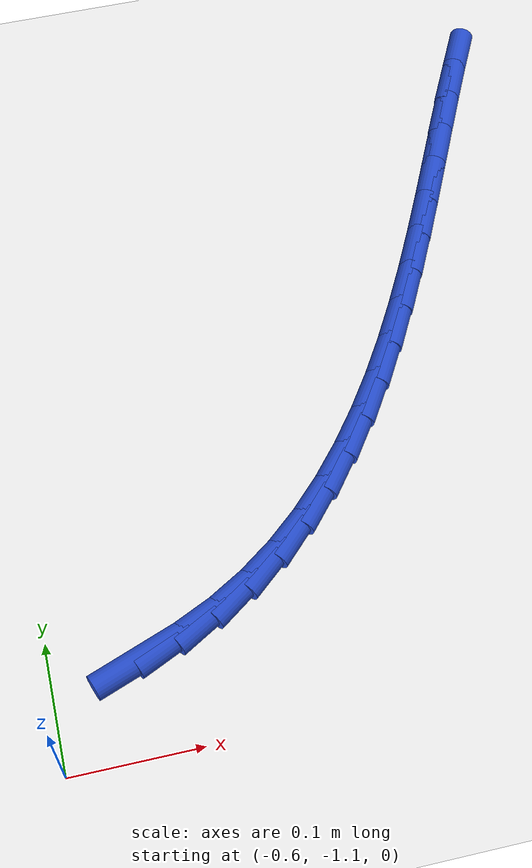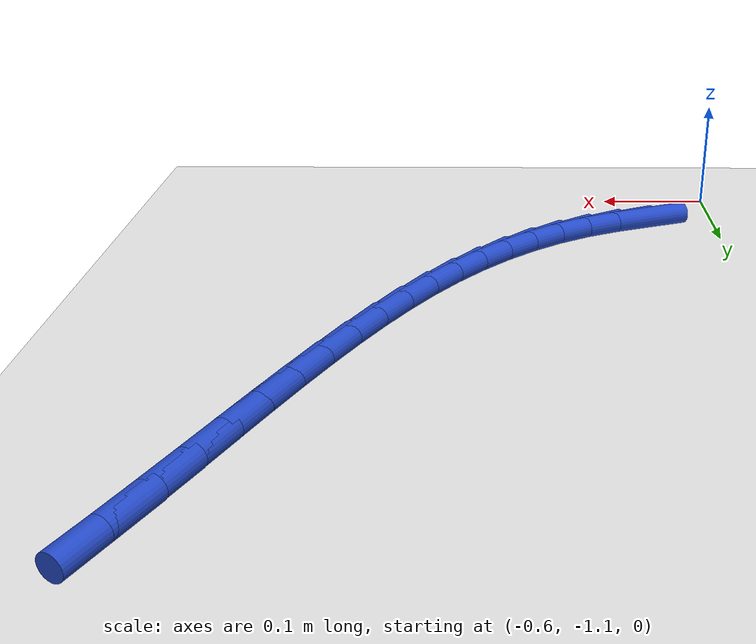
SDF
<sdf version="1.6">
 <world name="default">
  <model name="ground_plane">
   <static>1</static>
   <link name="link">
    <collision name="collision">
     <geometry><plane><normal>0 0 1</normal><size>100 100</size></plane></geometry>
     <surface><friction><ode><mu>100</mu><mu2>50</mu2></ode></friction></surface>
    </collision>
    <visual name="visual">
     <cast_shadows>0</cast_shadows>
     <geometry><plane><normal>0 0 1</normal><size>100 100</size></plane></geometry>
     <material>
      <script><uri>file://media/materials/scripts/gazebo.material</uri><name>Gazebo/WhiteGlow</name></script>
     </material>
    </visual>
   </link>
  </model>
  <model name="line">
   <link name="link_185">
    <pose>-0.5330628065357319 -1.0299511097980987 0.01 0 1.57 0.3569933631917016</pose>
    <collision name="collision">
     <geometry><cylinder><radius>0.01</radius><length>0.08</length></cylinder></geometry>
    </collision>
    <visual name="visual">
     <material>
      <script><name>Gazebo/Blue</name><uri>file://media/materials/scripts/gazebo.material</uri></script>
     </material>
     <geometry><cylinder><radius>0.01</radius><length>0.08</length></cylinder></geometry>
    </visual>
   </link>
   <link name="link_186">
    <pose>-0.5019303714841002 -1.018339517629206 0.01 0 1.57 0.43510692588045785</pose>
    <collision name="collision">
     <geometry><cylinder><radius>0.01</radius><length>0.08</length></cylinder></geometry>
    </collision>
    <visual name="visual">
     <material>
      <script><name>Gazebo/Blue</name><uri>file://media/materials/scripts/gazebo.material</uri></script>
     </material>
     <geometry><cylinder><radius>0.01</radius><length>0.08</length></cylinder></geometry>
    </visual>
   </link>
   <link name="link_187">
    <pose>-0.4723407516763172 -1.0045857690656377 0.01 0 1.57 0.5326010901114498</pose>
    <collision name="collision">
     <geometry><cylinder><radius>0.01</radius><length>0.08</length></cylinder></geometry>
    </collision>
    <visual name="visual">
     <material>
      <script><name>Gazebo/Blue</name><uri>file://media/materials/scripts/gazebo.material</uri></script>
     </material>
     <geometry><cylinder><radius>0.01</radius><length>0.08</length></cylinder></geometry>
    </visual>
   </link>
   <link name="link_188">
    <pose>-0.44456528169954584 -0.9882144516904686 0.01 0 1.57 0.6295128754005734</pose>
    <collision name="collision">
     <geometry><cylinder><radius>0.01</radius><length>0.08</length></cylinder></geometry>
    </collision>
    <visual name="visual">
     <material>
      <script><name>Gazebo/Blue</name><uri>file://media/materials/scripts/gazebo.material</uri></script>
     </material>
     <geometry><cylinder><radius>0.01</radius><length>0.08</length></cylinder></geometry>
    </visual>
   </link>
   <link name="link_189">
    <pose>-0.4185633994945465 -0.9692754890908538 0.01 0 1.57 0.7182928912302163</pose>
    <collision name="collision">
     <geometry><cylinder><radius>0.01</radius><length>0.08</length></cylinder></geometry>
    </collision>
    <visual name="visual">
     <material>
      <script><name>Gazebo/Blue</name><uri>file://media/materials/scripts/gazebo.material</uri></script>
     </material>
     <geometry><cylinder><radius>0.01</radius><length>0.08</length></cylinder></geometry>
    </visual>
   </link>
   <link name="link_190">
    <pose>-0.3941989985574737 -0.947979732960485 0.01 0 1.57 0.7978931191088711</pose>
    <collision name="collision">
     <geometry><cylinder><radius>0.01</radius><length>0.08</length></cylinder></geometry>
    </collision>
    <visual name="visual">
     <material>
      <script><name>Gazebo/Blue</name><uri>file://media/materials/scripts/gazebo.material</uri></script>
     </material>
     <geometry><cylinder><radius>0.01</radius><length>0.08</length></cylinder></geometry>
    </visual>
   </link>
   <link name="link_191">
    <pose>-0.37133594764199096 -0.9245380766675092 0.01 0 1.57 0.8679593465271759</pose>
    <collision name="collision">
     <geometry><cylinder><radius>0.01</radius><length>0.08</length></cylinder></geometry>
    </collision>
    <visual name="visual">
     <material>
      <script><name>Gazebo/Blue</name><uri>file://media/materials/scripts/gazebo.material</uri></script>
     </material>
     <geometry><cylinder><radius>0.01</radius><length>0.08</length></cylinder></geometry>
    </visual>
   </link>
   <link name="link_192">
    <pose>-0.3498381155017599 -0.8991614135800713 0.01 0 1.57 0.9286388256259541</pose>
    <collision name="collision">
     <geometry><cylinder><radius>0.01</radius><length>0.08</length></cylinder></geometry>
    </collision>
    <visual name="visual">
     <material>
      <script><name>Gazebo/Blue</name><uri>file://media/materials/scripts/gazebo.material</uri></script>
     </material>
     <geometry><cylinder><radius>0.01</radius><length>0.08</length></cylinder></geometry>
    </visual>
   </link>
   <link name="link_193">
    <pose>-0.3295693708904429 -0.8720606370663168 0.01 0 1.57 0.9803832017423327</pose>
    <collision name="collision">
     <geometry><cylinder><radius>0.01</radius><length>0.08</length></cylinder></geometry>
    </collision>
    <visual name="visual">
     <material>
      <script><name>Gazebo/Blue</name><uri>file://media/materials/scripts/gazebo.material</uri></script>
     </material>
     <geometry><cylinder><radius>0.01</radius><length>0.08</length></cylinder></geometry>
    </visual>
   </link>
   <link name="link_194">
    <pose>-0.3103935825617023 -0.8434466404943908 0.01 0 1.57 1.023787338468277</pose>
    <collision name="collision">
     <geometry><cylinder><radius>0.01</radius><length>0.08</length></cylinder></geometry>
    </collision>
    <visual name="visual">
     <material>
      <script><name>Gazebo/Blue</name><uri>file://media/materials/scripts/gazebo.material</uri></script>
     </material>
     <geometry><cylinder><radius>0.01</radius><length>0.08</length></cylinder></geometry>
    </visual>
   </link>
   <link name="link_195">
    <pose>-0.29217461926920013 -0.8135303172324386 0.01 0 1.57 1.0594754858056288</pose>
    <collision name="collision">
     <geometry><cylinder><radius>0.01</radius><length>0.08</length></cylinder></geometry>
    </collision>
    <visual name="visual">
     <material>
      <script><name>Gazebo/Blue</name><uri>file://media/materials/scripts/gazebo.material</uri></script>
     </material>
     <geometry><cylinder><radius>0.01</radius><length>0.08</length></cylinder></geometry>
    </visual>
   </link>
   <link name="link_196">
    <pose>-0.2747763497665995 -0.7825225606486073 0.01 0 1.57 1.0880292731876064</pose>
    <collision name="collision">
     <geometry><cylinder><radius>0.01</radius><length>0.08</length></cylinder></geometry>
    </collision>
    <visual name="visual">
     <material>
      <script><name>Gazebo/Blue</name><uri>file://media/materials/scripts/gazebo.material</uri></script>
     </material>
     <geometry><cylinder><radius>0.01</radius><length>0.08</length></cylinder></geometry>
    </visual>
   </link>
   <link name="link_197">
    <pose>-0.25806264280756236 -0.7506342641110413 0.01 0 1.57 1.1099463058325318</pose>
    <collision name="collision">
     <geometry><cylinder><radius>0.01</radius><length>0.08</length></cylinder></geometry>
    </collision>
    <visual name="visual">
     <material>
      <script><name>Gazebo/Blue</name><uri>file://media/materials/scripts/gazebo.material</uri></script>
     </material>
     <geometry><cylinder><radius>0.01</radius><length>0.08</length></cylinder></geometry>
    </visual>
   </link>
   <link name="link_198">
    <pose>-0.24189736714575102 -0.7180763209878863 0.01 0 1.57 1.1256184623105114</pose>
    <collision name="collision">
     <geometry><cylinder><radius>0.01</radius><length>0.08</length></cylinder></geometry>
    </collision>
    <visual name="visual">
     <material>
      <script><name>Gazebo/Blue</name><uri>file://media/materials/scripts/gazebo.material</uri></script>
     </material>
     <geometry><cylinder><radius>0.01</radius><length>0.08</length></cylinder></geometry>
    </visual>
   </link>
   <link name="link_199">
    <pose>-0.22614439153482765 -0.6850596246472873 0.01 0 1.57 1.1353214541889938</pose>
    <collision name="collision">
     <geometry><cylinder><radius>0.01</radius><length>0.08</length></cylinder></geometry>
    </collision>
    <visual name="visual">
     <material>
      <script><name>Gazebo/Blue</name><uri>file://media/materials/scripts/gazebo.material</uri></script>
     </material>
     <geometry><cylinder><radius>0.01</radius><length>0.08</length></cylinder></geometry>
    </visual>
   </link>
   <link name="link_200">
    <pose>-0.21066758472845507 -0.6517950684573908 0.01 0 1.57 1.1392098553093364</pose>
    <collision name="collision">
     <geometry><cylinder><radius>0.01</radius><length>0.08</length></cylinder></geometry>
    </collision>
    <visual name="visual">
     <material>
      <script><name>Gazebo/Blue</name><uri>file://media/materials/scripts/gazebo.material</uri></script>
     </material>
     <geometry><cylinder><radius>0.01</radius><length>0.08</length></cylinder></geometry>
    </visual>
   </link>
   <link name="link_201">
    <pose>-0.1953308154802955 -0.6184935457863422 0.01 0 1.57 1.1373139565882604</pose>
    <collision name="collision">
     <geometry><cylinder><radius>0.01</radius><length>0.08</length></cylinder></geometry>
    </collision>
    <visual name="visual">
     <material>
      <script><name>Gazebo/Blue</name><uri>file://media/materials/scripts/gazebo.material</uri></script>
     </material>
     <geometry><cylinder><radius>0.01</radius><length>0.08</length></cylinder></geometry>
    </visual>
   </link>
   <link name="link_202">
    <pose>-0.1799979525440111 -0.5853659500022866 0.01 0 1.57 1.129536397142145</pose>
    <collision name="collision">
     <geometry><cylinder><radius>0.01</radius><length>0.08</length></cylinder></geometry>
    </collision>
    <visual name="visual">
     <material>
      <script><name>Gazebo/Blue</name><uri>file://media/materials/scripts/gazebo.material</uri></script>
     </material>
     <geometry><cylinder><radius>0.01</radius><length>0.08</length></cylinder></geometry>
    </visual>
   </link>
   <link name="link_203">
    <pose>-0.164532864673264 -0.5526231744733692 0.01 0 1.57 1.1162258584758749</pose>
    <collision name="collision">
     <geometry><cylinder><radius>0.01</radius><length>0.08</length></cylinder></geometry>
    </collision>
    <visual name="visual">
     <material>
      <script><name>Gazebo/Blue</name><uri>file://media/materials/scripts/gazebo.material</uri></script>
     </material>
     <geometry><cylinder><radius>0.01</radius><length>0.08</length></cylinder></geometry>
    </visual>
   </link>
  </model>
 </world>
</sdf>
